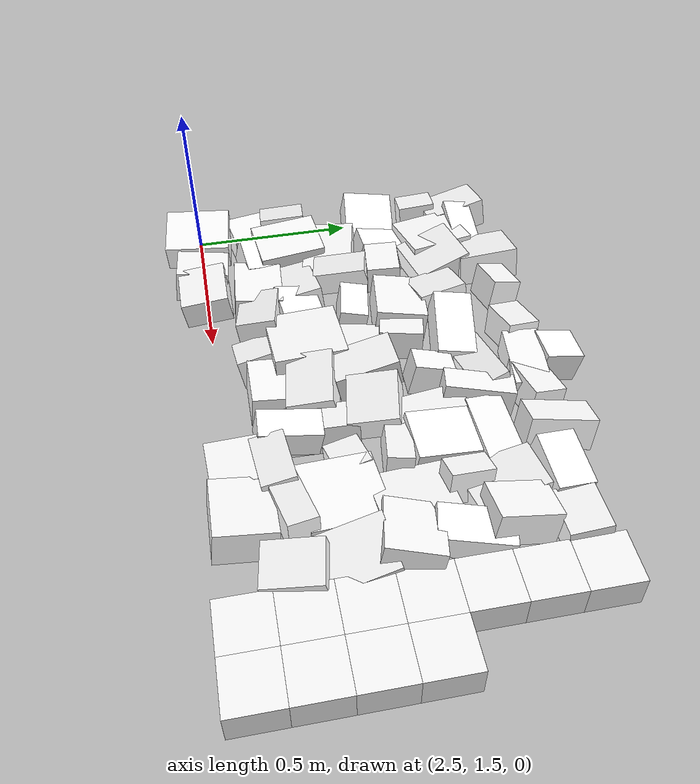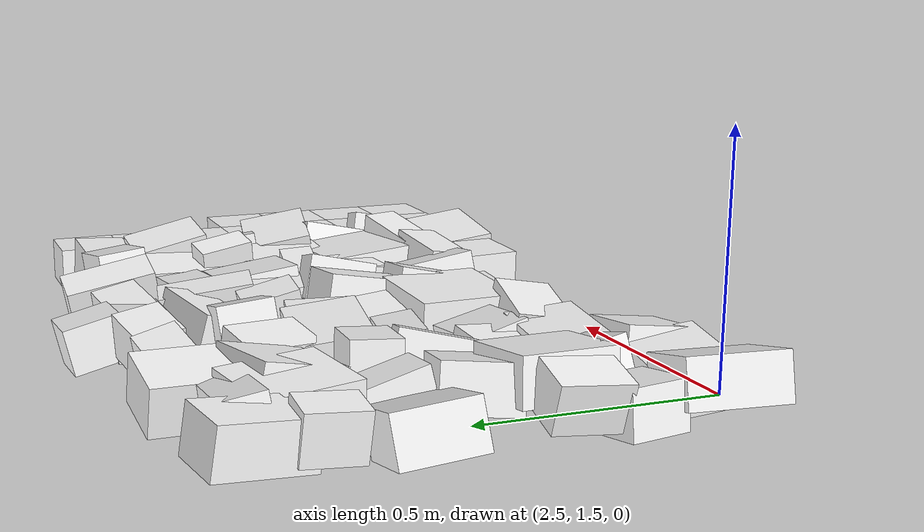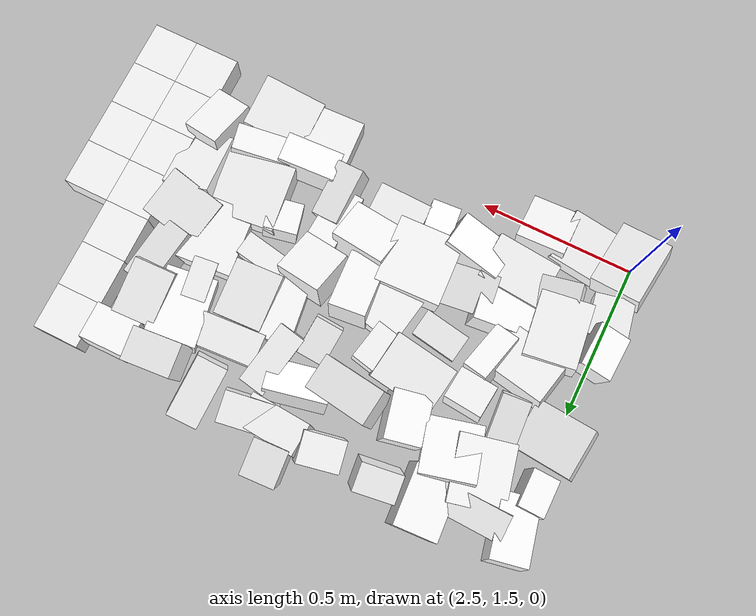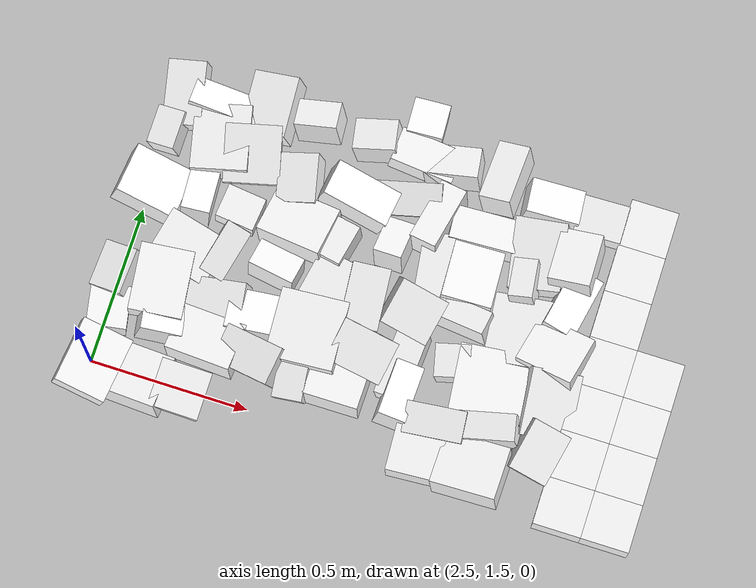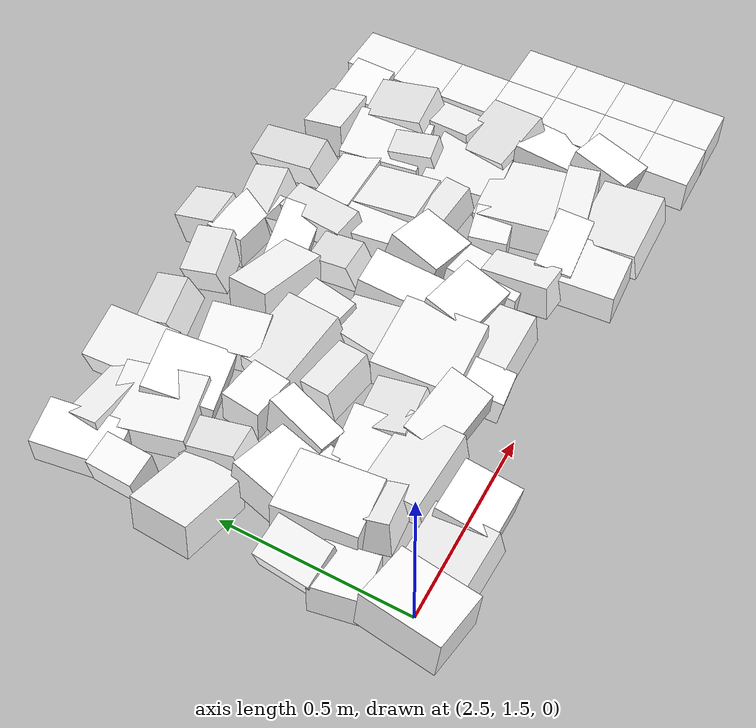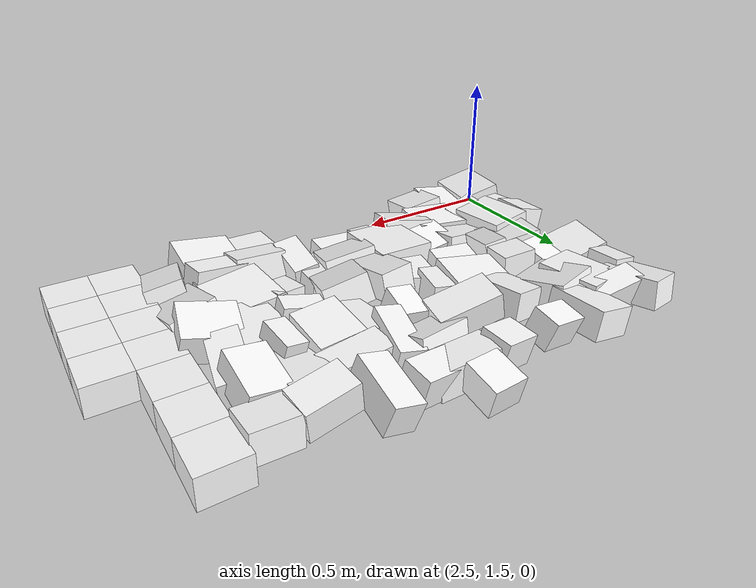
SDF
<sdf version="1.7">
 <world name="default">
  <include><uri>model://sun</uri></include>
  <model name="static_environment">
   <static>true</static>
   <link name="region_530">
    <pose>2.5076814718105576 1.4957768757990042 0.031568006959826915 -0.0055398618858787385 0.22804185539591587 -0.11849545210904816</pose>
    <collision name="region_530_collision">
     <geometry><box><size>0.1640660648733593 0.20913328548267288 0.1</size></box></geometry>
     <surface><friction><ode><mu>1.0</mu><mu2>1.0</mu2></ode></friction></surface>
    </collision>
    <visual name="region_530_visual">
     <geometry><box><size>0.1640660648733593 0.20913328548267288 0.1</size></box></geometry>
     <material><ambient>1.0 1.0 1.0 1.0</ambient><diffuse>1.0 1.0 1.0 1.0</diffuse></material>
    </visual>
   </link>
   <link name="region_531">
    <pose>2.6515708737576853 1.4946352192794792 0.001680859106671212 -0.11848757534612836 -0.13990396817205109 -0.07075057976595311</pose>
    <collision name="region_531_collision">
     <geometry><box><size>0.1927850153646151 0.16695596059760995 0.1</size></box></geometry>
     <surface><friction><ode><mu>1.0</mu><mu2>1.0</mu2></ode></friction></surface>
    </collision>
    <visual name="region_531_visual">
     <geometry><box><size>0.1927850153646151 0.16695596059760995 0.1</size></box></geometry>
     <material><ambient>1.0 1.0 1.0 1.0</ambient><diffuse>1.0 1.0 1.0 1.0</diffuse></material>
    </visual>
   </link>
   <link name="region_532">
    <pose>2.786901135315005 1.496139614787951 0.017382974479607596 0.11973167539864021 0.11310366122033366 0.00021362451981787878</pose>
    <collision name="region_532_collision">
     <geometry><box><size>0.15815211331805767 0.14937282128342147 0.1</size></box></geometry>
     <surface><friction><ode><mu>1.0</mu><mu2>1.0</mu2></ode></friction></surface>
    </collision>
    <visual name="region_532_visual">
     <geometry><box><size>0.15815211331805767 0.14937282128342147 0.1</size></box></geometry>
     <material><ambient>1.0 1.0 1.0 1.0</ambient><diffuse>1.0 1.0 1.0 1.0</diffuse></material>
    </visual>
   </link>
   <link name="region_537">
    <pose>3.531568796084356 1.522625037989375 0.01966503317934848 -0.013343253054145576 -0.04038233263856855 0.05466085649601515</pose>
    <collision name="region_537_collision">
     <geometry><box><size>0.15732103376469306 0.14947723644080474 0.1</size></box></geometry>
     <surface><friction><ode><mu>1.0</mu><mu2>1.0</mu2></ode></friction></surface>
    </collision>
    <visual name="region_537_visual">
     <geometry><box><size>0.15732103376469306 0.14947723644080474 0.1</size></box></geometry>
     <material><ambient>1.0 1.0 1.0 1.0</ambient><diffuse>1.0 1.0 1.0 1.0</diffuse></material>
    </visual>
   </link>
   <link name="region_538">
    <pose>3.7020041893971536 1.5247222728205738 0.040335434540967684 -0.12772019359927494 -0.13984663478878673 0.0013504137177902664</pose>
    <collision name="region_538_collision">
     <geometry><box><size>0.20415039297976195 0.16852878841279345 0.1</size></box></geometry>
     <surface><friction><ode><mu>1.0</mu><mu2>1.0</mu2></ode></friction></surface>
    </collision>
    <visual name="region_538_visual">
     <geometry><box><size>0.20415039297976195 0.16852878841279345 0.1</size></box></geometry>
     <material><ambient>1.0 1.0 1.0 1.0</ambient><diffuse>1.0 1.0 1.0 1.0</diffuse></material>
    </visual>
   </link>
   <link name="region_550">
    <pose>2.4984085819799624 1.67162417474932 0.0028601819481333447 0.0042888951992146596 0.09757328563466916 0.1869522985641784</pose>
    <collision name="region_550_collision">
     <geometry><box><size>0.12426772657355908 0.1330524193768934 0.1</size></box></geometry>
     <surface><friction><ode><mu>1.0</mu><mu2>1.0</mu2></ode></friction></surface>
    </collision>
    <visual name="region_550_visual">
     <geometry><box><size>0.12426772657355908 0.1330524193768934 0.1</size></box></geometry>
     <material><ambient>1.0 1.0 1.0 1.0</ambient><diffuse>1.0 1.0 1.0 1.0</diffuse></material>
    </visual>
   </link>
   <link name="region_551">
    <pose>2.6653898908183615 1.6762723055849853 0.03018759457789091 -0.14557207132012523 0.24685727497245558 0.13966175191827196</pose>
    <collision name="region_551_collision">
     <geometry><box><size>0.1298728478875402 0.10021600310100176 0.1</size></box></geometry>
     <surface><friction><ode><mu>1.0</mu><mu2>1.0</mu2></ode></friction></surface>
    </collision>
    <visual name="region_551_visual">
     <geometry><box><size>0.1298728478875402 0.10021600310100176 0.1</size></box></geometry>
     <material><ambient>1.0 1.0 1.0 1.0</ambient><diffuse>1.0 1.0 1.0 1.0</diffuse></material>
    </visual>
   </link>
   <link name="region_552">
    <pose>2.8187776228478914 1.6631923186933677 0.021376018807656934 -0.09056033977986166 -0.08234724325951992 -0.0649613862708413</pose>
    <collision name="region_552_collision">
     <geometry><box><size>0.2097559328130741 0.1493497404227089 0.1</size></box></geometry>
     <surface><friction><ode><mu>1.0</mu><mu2>1.0</mu2></ode></friction></surface>
    </collision>
    <visual name="region_552_visual">
     <geometry><box><size>0.2097559328130741 0.1493497404227089 0.1</size></box></geometry>
     <material><ambient>1.0 1.0 1.0 1.0</ambient><diffuse>1.0 1.0 1.0 1.0</diffuse></material>
    </visual>
   </link>
   <link name="region_553">
    <pose>2.9624944194084417 1.6568385536874382 0.03981089140452365 0.15445395185810312 -0.16435714184399508 -0.1717365103596638</pose>
    <collision name="region_553_collision">
     <geometry><box><size>0.18700749862652458 0.12020930522267306 0.1</size></box></geometry>
     <surface><friction><ode><mu>1.0</mu><mu2>1.0</mu2></ode></friction></surface>
    </collision>
    <visual name="region_553_visual">
     <geometry><box><size>0.18700749862652458 0.12020930522267306 0.1</size></box></geometry>
     <material><ambient>1.0 1.0 1.0 1.0</ambient><diffuse>1.0 1.0 1.0 1.0</diffuse></material>
    </visual>
   </link>
   <link name="region_554">
    <pose>3.1017398854296445 1.630935391366017 0.002756050681184702 0.15413326450859954 -0.0736210067693357 0.09524142421478343</pose>
    <collision name="region_554_collision">
     <geometry><box><size>0.0939086746460353 0.12610695431808672 0.1</size></box></geometry>
     <surface><friction><ode><mu>1.0</mu><mu2>1.0</mu2></ode></friction></surface>
    </collision>
    <visual name="region_554_visual">
     <geometry><box><size>0.0939086746460353 0.12610695431808672 0.1</size></box></geometry>
     <material><ambient>1.0 1.0 1.0 1.0</ambient><diffuse>1.0 1.0 1.0 1.0</diffuse></material>
    </visual>
   </link>
   <link name="region_555">
    <pose>3.235659246582542 1.648739117863021 0.0006170757839120078 -0.09701220259592974 -0.05631189676451864 -0.005017888298105455</pose>
    <collision name="region_555_collision">
     <geometry><box><size>0.17497054567080686 0.11994226667458904 0.1</size></box></geometry>
     <surface><friction><ode><mu>1.0</mu><mu2>1.0</mu2></ode></friction></surface>
    </collision>
    <visual name="region_555_visual">
     <geometry><box><size>0.17497054567080686 0.11994226667458904 0.1</size></box></geometry>
     <material><ambient>1.0 1.0 1.0 1.0</ambient><diffuse>1.0 1.0 1.0 1.0</diffuse></material>
    </visual>
   </link>
   <link name="region_556">
    <pose>3.4236633445759646 1.6795070127931058 0.02695020485513048 -0.16139881131398393 0.13432908697854268 -0.04848241621808452</pose>
    <collision name="region_556_collision">
     <geometry><box><size>0.08874882262221645 0.18478351056948586 0.1</size></box></geometry>
     <surface><friction><ode><mu>1.0</mu><mu2>1.0</mu2></ode></friction></surface>
    </collision>
    <visual name="region_556_visual">
     <geometry><box><size>0.08874882262221645 0.18478351056948586 0.1</size></box></geometry>
     <material><ambient>1.0 1.0 1.0 1.0</ambient><diffuse>1.0 1.0 1.0 1.0</diffuse></material>
    </visual>
   </link>
   <link name="region_557">
    <pose>3.558452902324011 1.6290438012032111 0.03886972632482305 0.11793235004464825 -0.1037312264085109 0.08477042501019494</pose>
    <collision name="region_557_collision">
     <geometry><box><size>0.18528931789354486 0.09819742179364188 0.1</size></box></geometry>
     <surface><friction><ode><mu>1.0</mu><mu2>1.0</mu2></ode></friction></surface>
    </collision>
    <visual name="region_557_visual">
     <geometry><box><size>0.18528931789354486 0.09819742179364188 0.1</size></box></geometry>
     <material><ambient>1.0 1.0 1.0 1.0</ambient><diffuse>1.0 1.0 1.0 1.0</diffuse></material>
    </visual>
   </link>
   <link name="region_558">
    <pose>3.7039201161379065 1.6542712644716806 0.04935639590902276 -0.025953468332759022 -0.18295366509076916 0.19921855874956973</pose>
    <collision name="region_558_collision">
     <geometry><box><size>0.2033711821210401 0.08479166280243756 0.1</size></box></geometry>
     <surface><friction><ode><mu>1.0</mu><mu2>1.0</mu2></ode></friction></surface>
    </collision>
    <visual name="region_558_visual">
     <geometry><box><size>0.2033711821210401 0.08479166280243756 0.1</size></box></geometry>
     <material><ambient>1.0 1.0 1.0 1.0</ambient><diffuse>1.0 1.0 1.0 1.0</diffuse></material>
    </visual>
   </link>
   <link name="region_559">
    <pose>3.8761352028389977 1.6395269957842182 0.03998851364366082 0.15643175212717803 0.20947934922514366 -0.1750871984683744</pose>
    <collision name="region_559_collision">
     <geometry><box><size>0.12500217326562607 0.16507961312182964 0.1</size></box></geometry>
     <surface><friction><ode><mu>1.0</mu><mu2>1.0</mu2></ode></friction></surface>
    </collision>
    <visual name="region_559_visual">
     <geometry><box><size>0.12500217326562607 0.16507961312182964 0.1</size></box></geometry>
     <material><ambient>1.0 1.0 1.0 1.0</ambient><diffuse>1.0 1.0 1.0 1.0</diffuse></material>
    </visual>
   </link>
   <link name="region_570">
    <pose>2.4923715830411934 1.788027391890941 0.035369644690111925 0.06986474430687106 -0.22894318589666007 -0.07739362286852614</pose>
    <collision name="region_570_collision">
     <geometry><box><size>0.10536326010167556 0.14612067975087553 0.1</size></box></geometry>
     <surface><friction><ode><mu>1.0</mu><mu2>1.0</mu2></ode></friction></surface>
    </collision>
    <visual name="region_570_visual">
     <geometry><box><size>0.10536326010167556 0.14612067975087553 0.1</size></box></geometry>
     <material><ambient>1.0 1.0 1.0 1.0</ambient><diffuse>1.0 1.0 1.0 1.0</diffuse></material>
    </visual>
   </link>
   <link name="region_571">
    <pose>2.6316556749295215 1.7885410384861773 0.042605253919817454 0.03296478802090108 0.08572706935795238 0.11934889766599366</pose>
    <collision name="region_571_collision">
     <geometry><box><size>0.16619526351678537 0.21172243492698042 0.1</size></box></geometry>
     <surface><friction><ode><mu>1.0</mu><mu2>1.0</mu2></ode></friction></surface>
    </collision>
    <visual name="region_571_visual">
     <geometry><box><size>0.16619526351678537 0.21172243492698042 0.1</size></box></geometry>
     <material><ambient>1.0 1.0 1.0 1.0</ambient><diffuse>1.0 1.0 1.0 1.0</diffuse></material>
    </visual>
   </link>
   <link name="region_572">
    <pose>2.8014255634884444 1.7891252990910242 0.0012958196978701986 0.09343863976034272 -0.1288095050315436 0.1235099319183231</pose>
    <collision name="region_572_collision">
     <geometry><box><size>0.19432395758099788 0.13422188477039676 0.1</size></box></geometry>
     <surface><friction><ode><mu>1.0</mu><mu2>1.0</mu2></ode></friction></surface>
    </collision>
    <visual name="region_572_visual">
     <geometry><box><size>0.19432395758099788 0.13422188477039676 0.1</size></box></geometry>
     <material><ambient>1.0 1.0 1.0 1.0</ambient><diffuse>1.0 1.0 1.0 1.0</diffuse></material>
    </visual>
   </link>
   <link name="region_573">
    <pose>2.9321410372006627 1.7765549712439292 0.00948256250778743 -0.22931290725654985 0.04888858812818686 0.1147546807073268</pose>
    <collision name="region_573_collision">
     <geometry><box><size>0.16971889044296298 0.1339951754151947 0.1</size></box></geometry>
     <surface><friction><ode><mu>1.0</mu><mu2>1.0</mu2></ode></friction></surface>
    </collision>
    <visual name="region_573_visual">
     <geometry><box><size>0.16971889044296298 0.1339951754151947 0.1</size></box></geometry>
     <material><ambient>1.0 1.0 1.0 1.0</ambient><diffuse>1.0 1.0 1.0 1.0</diffuse></material>
    </visual>
   </link>
   <link name="region_574">
    <pose>3.105630301556909 1.7784410831244712 0.042640977484312025 0.006459481364513797 -0.05468793864959892 0.05369043267411622</pose>
    <collision name="region_574_collision">
     <geometry><box><size>0.2117453371799521 0.2190020692192252 0.1</size></box></geometry>
     <surface><friction><ode><mu>1.0</mu><mu2>1.0</mu2></ode></friction></surface>
    </collision>
    <visual name="region_574_visual">
     <geometry><box><size>0.2117453371799521 0.2190020692192252 0.1</size></box></geometry>
     <material><ambient>1.0 1.0 1.0 1.0</ambient><diffuse>1.0 1.0 1.0 1.0</diffuse></material>
    </visual>
   </link>
   <link name="region_575">
    <pose>3.276775845261098 1.7734721945386722 0.03969808329253899 0.19966338633009162 0.15414834099931374 -0.14333811257244622</pose>
    <collision name="region_575_collision">
     <geometry><box><size>0.18135667290933993 0.13857290186814222 0.1</size></box></geometry>
     <surface><friction><ode><mu>1.0</mu><mu2>1.0</mu2></ode></friction></surface>
    </collision>
    <visual name="region_575_visual">
     <geometry><box><size>0.18135667290933993 0.13857290186814222 0.1</size></box></geometry>
     <material><ambient>1.0 1.0 1.0 1.0</ambient><diffuse>1.0 1.0 1.0 1.0</diffuse></material>
    </visual>
   </link>
   <link name="region_576">
    <pose>3.408488720398182 1.7734546873334018 0.002341990334655586 0.043425796888531154 -0.07137661800411294 -0.06282477477846887</pose>
    <collision name="region_576_collision">
     <geometry><box><size>0.09762890317799491 0.22073841437311614 0.1</size></box></geometry>
     <surface><friction><ode><mu>1.0</mu><mu2>1.0</mu2></ode></friction></surface>
    </collision>
    <visual name="region_576_visual">
     <geometry><box><size>0.09762890317799491 0.22073841437311614 0.1</size></box></geometry>
     <material><ambient>1.0 1.0 1.0 1.0</ambient><diffuse>1.0 1.0 1.0 1.0</diffuse></material>
    </visual>
   </link>
   <link name="region_577">
    <pose>3.554218689686156 1.8280768703719152 0.005503803574767052 0.03202887495100709 -0.10392997606887072 0.2292311001568585</pose>
    <collision name="region_577_collision">
     <geometry><box><size>0.10928244734717256 0.10323825948265071 0.1</size></box></geometry>
     <surface><friction><ode><mu>1.0</mu><mu2>1.0</mu2></ode></friction></surface>
    </collision>
    <visual name="region_577_visual">
     <geometry><box><size>0.10928244734717256 0.10323825948265071 0.1</size></box></geometry>
     <material><ambient>1.0 1.0 1.0 1.0</ambient><diffuse>1.0 1.0 1.0 1.0</diffuse></material>
    </visual>
   </link>
   <link name="region_578">
    <pose>3.6795670045683586 1.7850721563582677 0.016352307671817817 -0.07671111084763449 0.0054481557765695965 0.10298431651623152</pose>
    <collision name="region_578_collision">
     <geometry><box><size>0.2196614902504646 0.2227195221169087 0.1</size></box></geometry>
     <surface><friction><ode><mu>1.0</mu><mu2>1.0</mu2></ode></friction></surface>
    </collision>
    <visual name="region_578_visual">
     <geometry><box><size>0.2196614902504646 0.2227195221169087 0.1</size></box></geometry>
     <material><ambient>1.0 1.0 1.0 1.0</ambient><diffuse>1.0 1.0 1.0 1.0</diffuse></material>
    </visual>
   </link>
   <link name="region_579">
    <pose>3.8622884403953464 1.7912785031697367 0.020790022788325976 0.2318473825692236 0.23224546902507015 0.15085299111031253</pose>
    <collision name="region_579_collision">
     <geometry><box><size>0.15752704659282607 0.20813670010384766 0.1</size></box></geometry>
     <surface><friction><ode><mu>1.0</mu><mu2>1.0</mu2></ode></friction></surface>
    </collision>
    <visual name="region_579_visual">
     <geometry><box><size>0.15752704659282607 0.20813670010384766 0.1</size></box></geometry>
     <material><ambient>1.0 1.0 1.0 1.0</ambient><diffuse>1.0 1.0 1.0 1.0</diffuse></material>
    </visual>
   </link>
   <link name="region_591">
    <pose>2.6702042445668406 1.9216854791190636 0.020514065701449643 0.07317742830067642 0.17660192533636426 -0.21381300547797538</pose>
    <collision name="region_591_collision">
     <geometry><box><size>0.20082703177499545 0.1599241899353591 0.1</size></box></geometry>
     <surface><friction><ode><mu>1.0</mu><mu2>1.0</mu2></ode></friction></surface>
    </collision>
    <visual name="region_591_visual">
     <geometry><box><size>0.20082703177499545 0.1599241899353591 0.1</size></box></geometry>
     <material><ambient>1.0 1.0 1.0 1.0</ambient><diffuse>1.0 1.0 1.0 1.0</diffuse></material>
    </visual>
   </link>
   <link name="region_592">
    <pose>2.783990520727632 1.947064758381425 0.035931407661523605 0.21279713986770654 0.19934674387777757 -0.21348617494816302</pose>
    <collision name="region_592_collision">
     <geometry><box><size>0.08049794742514396 0.17107467915113123 0.1</size></box></geometry>
     <surface><friction><ode><mu>1.0</mu><mu2>1.0</mu2></ode></friction></surface>
    </collision>
    <visual name="region_592_visual">
     <geometry><box><size>0.08049794742514396 0.17107467915113123 0.1</size></box></geometry>
     <material><ambient>1.0 1.0 1.0 1.0</ambient><diffuse>1.0 1.0 1.0 1.0</diffuse></material>
    </visual>
   </link>
   <link name="region_593">
    <pose>2.9474401786433653 1.9490477211313721 0.016454711244962523 -0.15647982140211764 -0.015220761575641395 -0.16241684786364385</pose>
    <collision name="region_593_collision">
     <geometry><box><size>0.14874525593005802 0.08733805480922513 0.1</size></box></geometry>
     <surface><friction><ode><mu>1.0</mu><mu2>1.0</mu2></ode></friction></surface>
    </collision>
    <visual name="region_593_visual">
     <geometry><box><size>0.14874525593005802 0.08733805480922513 0.1</size></box></geometry>
     <material><ambient>1.0 1.0 1.0 1.0</ambient><diffuse>1.0 1.0 1.0 1.0</diffuse></material>
    </visual>
   </link>
   <link name="region_594">
    <pose>3.128240262408897 1.934073416715305 0.011242928584098762 -0.03591319916329949 -0.16779594189138808 -0.17377866305205564</pose>
    <collision name="region_594_collision">
     <geometry><box><size>0.14831460924106524 0.18510410539015726 0.1</size></box></geometry>
     <surface><friction><ode><mu>1.0</mu><mu2>1.0</mu2></ode></friction></surface>
    </collision>
    <visual name="region_594_visual">
     <geometry><box><size>0.14831460924106524 0.18510410539015726 0.1</size></box></geometry>
     <material><ambient>1.0 1.0 1.0 1.0</ambient><diffuse>1.0 1.0 1.0 1.0</diffuse></material>
    </visual>
   </link>
   <link name="region_595">
    <pose>3.2365846215157577 1.934942878510019 0.04985550375131445 0.18413107651438082 0.07073730432877251 0.08797261658531697</pose>
    <collision name="region_595_collision">
     <geometry><box><size>0.11882376036206337 0.19308182914945735 0.1</size></box></geometry>
     <surface><friction><ode><mu>1.0</mu><mu2>1.0</mu2></ode></friction></surface>
    </collision>
    <visual name="region_595_visual">
     <geometry><box><size>0.11882376036206337 0.19308182914945735 0.1</size></box></geometry>
     <material><ambient>1.0 1.0 1.0 1.0</ambient><diffuse>1.0 1.0 1.0 1.0</diffuse></material>
    </visual>
   </link>
   <link name="region_596">
    <pose>3.387998064059669 1.936384025520765 0.04930145678127188 0.19727016395654356 0.23915313570790642 -0.16093380854987865</pose>
    <collision name="region_596_collision">
     <geometry><box><size>0.1572895146162047 0.1485146122661266 0.1</size></box></geometry>
     <surface><friction><ode><mu>1.0</mu><mu2>1.0</mu2></ode></friction></surface>
    </collision>
    <visual name="region_596_visual">
     <geometry><box><size>0.1572895146162047 0.1485146122661266 0.1</size></box></geometry>
     <material><ambient>1.0 1.0 1.0 1.0</ambient><diffuse>1.0 1.0 1.0 1.0</diffuse></material>
    </visual>
   </link>
   <link name="region_597">
    <pose>3.53381301869413 1.969647741272027 0.016012367023358905 -0.07095374562769663 -0.18919025111250404 -0.14646407810316459</pose>
    <collision name="region_597_collision">
     <geometry><box><size>0.18857486813486377 0.07622669570913432 0.1</size></box></geometry>
     <surface><friction><ode><mu>1.0</mu><mu2>1.0</mu2></ode></friction></surface>
    </collision>
    <visual name="region_597_visual">
     <geometry><box><size>0.18857486813486377 0.07622669570913432 0.1</size></box></geometry>
     <material><ambient>1.0 1.0 1.0 1.0</ambient><diffuse>1.0 1.0 1.0 1.0</diffuse></material>
    </visual>
   </link>
   <link name="region_598">
    <pose>3.728460637407675 1.973718591452517 0.009875281496750411 -0.03651501950641162 -0.11946600117542866 0.0964438439434323</pose>
    <collision name="region_598_collision">
     <geometry><box><size>0.1999832019547301 0.2150221670040595 0.1</size></box></geometry>
     <surface><friction><ode><mu>1.0</mu><mu2>1.0</mu2></ode></friction></surface>
    </collision>
    <visual name="region_598_visual">
     <geometry><box><size>0.1999832019547301 0.2150221670040595 0.1</size></box></geometry>
     <material><ambient>1.0 1.0 1.0 1.0</ambient><diffuse>1.0 1.0 1.0 1.0</diffuse></material>
    </visual>
   </link>
   <link name="region_599">
    <pose>3.843613059696242 1.9362524545551416 0.04088174381360343 -0.18596308200609468 -0.19574430584567304 -0.18475116032502104</pose>
    <collision name="region_599_collision">
     <geometry><box><size>0.18580649976856728 0.16132644721481737 0.1</size></box></geometry>
     <surface><friction><ode><mu>1.0</mu><mu2>1.0</mu2></ode></friction></surface>
    </collision>
    <visual name="region_599_visual">
     <geometry><box><size>0.18580649976856728 0.16132644721481737 0.1</size></box></geometry>
     <material><ambient>1.0 1.0 1.0 1.0</ambient><diffuse>1.0 1.0 1.0 1.0</diffuse></material>
    </visual>
   </link>
   <link name="region_610">
    <pose>2.5024344932816014 2.0830373399928908 0.0068001229648586015 -0.12759347193872378 0.24910986796165624 -0.12248801805777115</pose>
    <collision name="region_610_collision">
     <geometry><box><size>0.19508509455642814 0.16435313467491203 0.1</size></box></geometry>
     <surface><friction><ode><mu>1.0</mu><mu2>1.0</mu2></ode></friction></surface>
    </collision>
    <visual name="region_610_visual">
     <geometry><box><size>0.19508509455642814 0.16435313467491203 0.1</size></box></geometry>
     <material><ambient>1.0 1.0 1.0 1.0</ambient><diffuse>1.0 1.0 1.0 1.0</diffuse></material>
    </visual>
   </link>
   <link name="region_611">
    <pose>2.653475113869324 2.0988919556263004 0.012515993751897676 -0.23866290301592463 0.041735822200817674 0.07678022723228511</pose>
    <collision name="region_611_collision">
     <geometry><box><size>0.09088398552009201 0.1673992755381036 0.1</size></box></geometry>
     <surface><friction><ode><mu>1.0</mu><mu2>1.0</mu2></ode></friction></surface>
    </collision>
    <visual name="region_611_visual">
     <geometry><box><size>0.09088398552009201 0.1673992755381036 0.1</size></box></geometry>
     <material><ambient>1.0 1.0 1.0 1.0</ambient><diffuse>1.0 1.0 1.0 1.0</diffuse></material>
    </visual>
   </link>
   <link name="region_612">
    <pose>2.792105140010216 2.078528445334909 0.04780245707693905 0.040705581225527865 0.06549971163998758 -0.10137697625228104</pose>
    <collision name="region_612_collision">
     <geometry><box><size>0.12330625569469356 0.10516245058101502 0.1</size></box></geometry>
     <surface><friction><ode><mu>1.0</mu><mu2>1.0</mu2></ode></friction></surface>
    </collision>
    <visual name="region_612_visual">
     <geometry><box><size>0.12330625569469356 0.10516245058101502 0.1</size></box></geometry>
     <material><ambient>1.0 1.0 1.0 1.0</ambient><diffuse>1.0 1.0 1.0 1.0</diffuse></material>
    </visual>
   </link>
   <link name="region_613">
    <pose>2.9758904298697866 2.092669004481413 0.028945490703327494 -0.11825544808463939 -0.12236519809558838 -0.13220733793185446</pose>
    <collision name="region_613_collision">
     <geometry><box><size>0.2097466503018947 0.15747184402854195 0.1</size></box></geometry>
     <surface><friction><ode><mu>1.0</mu><mu2>1.0</mu2></ode></friction></surface>
    </collision>
    <visual name="region_613_visual">
     <geometry><box><size>0.2097466503018947 0.15747184402854195 0.1</size></box></geometry>
     <material><ambient>1.0 1.0 1.0 1.0</ambient><diffuse>1.0 1.0 1.0 1.0</diffuse></material>
    </visual>
   </link>
   <link name="region_614">
    <pose>3.1107517508140576 2.0716932751982027 0.02606406663398661 -0.02269141074262493 -0.07759414917341645 -0.20345337893056115</pose>
    <collision name="region_614_collision">
     <geometry><box><size>0.07953194547043728 0.1331881210593902 0.1</size></box></geometry>
     <surface><friction><ode><mu>1.0</mu><mu2>1.0</mu2></ode></friction></surface>
    </collision>
    <visual name="region_614_visual">
     <geometry><box><size>0.07953194547043728 0.1331881210593902 0.1</size></box></geometry>
     <material><ambient>1.0 1.0 1.0 1.0</ambient><diffuse>1.0 1.0 1.0 1.0</diffuse></material>
    </visual>
   </link>
   <link name="region_615">
    <pose>3.272952508140227 2.1230151822582384 0.02559836235157715 -0.24343598672483174 -0.14067675517547773 -0.04665634540802721</pose>
    <collision name="region_615_collision">
     <geometry><box><size>0.09070765897608841 0.12427858548727667 0.1</size></box></geometry>
     <surface><friction><ode><mu>1.0</mu><mu2>1.0</mu2></ode></friction></surface>
    </collision>
    <visual name="region_615_visual">
     <geometry><box><size>0.09070765897608841 0.12427858548727667 0.1</size></box></geometry>
     <material><ambient>1.0 1.0 1.0 1.0</ambient><diffuse>1.0 1.0 1.0 1.0</diffuse></material>
    </visual>
   </link>
   <link name="region_616">
    <pose>3.415482775537993 2.089049114123154 0.001085584283756047 0.008816685626059584 -0.0782183341591226 0.13070828248198063</pose>
    <collision name="region_616_collision">
     <geometry><box><size>0.10204579248876276 0.2155114475071463 0.1</size></box></geometry>
     <surface><friction><ode><mu>1.0</mu><mu2>1.0</mu2></ode></friction></surface>
    </collision>
    <visual name="region_616_visual">
     <geometry><box><size>0.10204579248876276 0.2155114475071463 0.1</size></box></geometry>
     <material><ambient>1.0 1.0 1.0 1.0</ambient><diffuse>1.0 1.0 1.0 1.0</diffuse></material>
    </visual>
   </link>
   <link name="region_617">
    <pose>3.527658742990546 2.094080780050716 0.012828409041600975 -0.11667095102656938 0.06622854546747081 0.039518129282629655</pose>
    <collision name="region_617_collision">
     <geometry><box><size>0.15823859029656318 0.18439855349524337 0.1</size></box></geometry>
     <surface><friction><ode><mu>1.0</mu><mu2>1.0</mu2></ode></friction></surface>
    </collision>
    <visual name="region_617_visual">
     <geometry><box><size>0.15823859029656318 0.18439855349524337 0.1</size></box></geometry>
     <material><ambient>1.0 1.0 1.0 1.0</ambient><diffuse>1.0 1.0 1.0 1.0</diffuse></material>
    </visual>
   </link>
   <link name="region_618">
    <pose>3.6895372722905835 2.1218000495485394 0.04743962410544337 -0.15745964494248949 -0.20359048551591685 0.1495696382175799</pose>
    <collision name="region_618_collision">
     <geometry><box><size>0.07537682790059431 0.12686512531553032 0.1</size></box></geometry>
     <surface><friction><ode><mu>1.0</mu><mu2>1.0</mu2></ode></friction></surface>
    </collision>
    <visual name="region_618_visual">
     <geometry><box><size>0.07537682790059431 0.12686512531553032 0.1</size></box></geometry>
     <material><ambient>1.0 1.0 1.0 1.0</ambient><diffuse>1.0 1.0 1.0 1.0</diffuse></material>
    </visual>
   </link>
   <link name="region_619">
    <pose>3.839569766803786 2.1011099436246194 0.01879632923952797 -0.15860006952497835 0.13872678920801929 -0.21033673809289788</pose>
    <collision name="region_619_collision">
     <geometry><box><size>0.10377233230437027 0.20910902377414195 0.1</size></box></geometry>
     <surface><friction><ode><mu>1.0</mu><mu2>1.0</mu2></ode></friction></surface>
    </collision>
    <visual name="region_619_visual">
     <geometry><box><size>0.10377233230437027 0.20910902377414195 0.1</size></box></geometry>
     <material><ambient>1.0 1.0 1.0 1.0</ambient><diffuse>1.0 1.0 1.0 1.0</diffuse></material>
    </visual>
   </link>
   <link name="region_630">
    <pose>2.49872998265314 2.2581939595370675 0.028157888197684285 0.06823315731398949 -0.11917785324480823 -0.02102608356520269</pose>
    <collision name="region_630_collision">
     <geometry><box><size>0.08650922935042561 0.12227373922901735 0.1</size></box></geometry>
     <surface><friction><ode><mu>1.0</mu><mu2>1.0</mu2></ode></friction></surface>
    </collision>
    <visual name="region_630_visual">
     <geometry><box><size>0.08650922935042561 0.12227373922901735 0.1</size></box></geometry>
     <material><ambient>1.0 1.0 1.0 1.0</ambient><diffuse>1.0 1.0 1.0 1.0</diffuse></material>
    </visual>
   </link>
   <link name="region_631">
    <pose>2.668668543343829 2.275110644943904 0.02821619874520373 -0.023913891093815365 -0.08367878915786625 0.2292824122074208</pose>
    <collision name="region_631_collision">
     <geometry><box><size>0.17840066291127823 0.20947342602827393 0.1</size></box></geometry>
     <surface><friction><ode><mu>1.0</mu><mu2>1.0</mu2></ode></friction></surface>
    </collision>
    <visual name="region_631_visual">
     <geometry><box><size>0.17840066291127823 0.20947342602827393 0.1</size></box></geometry>
     <material><ambient>1.0 1.0 1.0 1.0</ambient><diffuse>1.0 1.0 1.0 1.0</diffuse></material>
    </visual>
   </link>
   <link name="region_632">
    <pose>2.7702036309782017 2.2621737412688585 0.031757093886188824 0.22500120631059956 0.01818597926525023 0.24973981562620196</pose>
    <collision name="region_632_collision">
     <geometry><box><size>0.17507138751042148 0.18224786953836072 0.1</size></box></geometry>
     <surface><friction><ode><mu>1.0</mu><mu2>1.0</mu2></ode></friction></surface>
    </collision>
    <visual name="region_632_visual">
     <geometry><box><size>0.17507138751042148 0.18224786953836072 0.1</size></box></geometry>
     <material><ambient>1.0 1.0 1.0 1.0</ambient><diffuse>1.0 1.0 1.0 1.0</diffuse></material>
    </visual>
   </link>
   <link name="region_633">
    <pose>2.9356005418268136 2.227507485836797 0.02564112659246109 0.03325037894944122 -0.18147767639875018 0.2177921564765236</pose>
    <collision name="region_633_collision">
     <geometry><box><size>0.12395330649960384 0.1556242081499808 0.1</size></box></geometry>
     <surface><friction><ode><mu>1.0</mu><mu2>1.0</mu2></ode></friction></surface>
    </collision>
    <visual name="region_633_visual">
     <geometry><box><size>0.12395330649960384 0.1556242081499808 0.1</size></box></geometry>
     <material><ambient>1.0 1.0 1.0 1.0</ambient><diffuse>1.0 1.0 1.0 1.0</diffuse></material>
    </visual>
   </link>
   <link name="region_634">
    <pose>3.1228621183601257 2.2294294816129168 0.04190627852874312 -0.13001261298383793 0.23506270063128681 -0.1556992704322664</pose>
    <collision name="region_634_collision">
     <geometry><box><size>0.2161069911698418 0.11811174779750037 0.1</size></box></geometry>
     <surface><friction><ode><mu>1.0</mu><mu2>1.0</mu2></ode></friction></surface>
    </collision>
    <visual name="region_634_visual">
     <geometry><box><size>0.2161069911698418 0.11811174779750037 0.1</size></box></geometry>
     <material><ambient>1.0 1.0 1.0 1.0</ambient><diffuse>1.0 1.0 1.0 1.0</diffuse></material>
    </visual>
   </link>
   <link name="region_635">
    <pose>3.2744805510669766 2.27976771568767 0.007718785017138086 0.23657142334704023 -0.08985709326718261 0.22204207283652572</pose>
    <collision name="region_635_collision">
     <geometry><box><size>0.2021747961670018 0.10444141396667934 0.1</size></box></geometry>
     <surface><friction><ode><mu>1.0</mu><mu2>1.0</mu2></ode></friction></surface>
    </collision>
    <visual name="region_635_visual">
     <geometry><box><size>0.2021747961670018 0.10444141396667934 0.1</size></box></geometry>
     <material><ambient>1.0 1.0 1.0 1.0</ambient><diffuse>1.0 1.0 1.0 1.0</diffuse></material>
    </visual>
   </link>
   <link name="region_636">
    <pose>3.3777662739132426 2.239910557926749 0.02184457654509138 -0.14354636536943743 -0.14051330923540617 -0.17827130270329655</pose>
    <collision name="region_636_collision">
     <geometry><box><size>0.08738263108863871 0.20849778001936062 0.1</size></box></geometry>
     <surface><friction><ode><mu>1.0</mu><mu2>1.0</mu2></ode></friction></surface>
    </collision>
    <visual name="region_636_visual">
     <geometry><box><size>0.08738263108863871 0.20849778001936062 0.1</size></box></geometry>
     <material><ambient>1.0 1.0 1.0 1.0</ambient><diffuse>1.0 1.0 1.0 1.0</diffuse></material>
    </visual>
   </link>
   <link name="region_637">
    <pose>3.520594109183101 2.2459214043567757 0.0005297200195066909 -0.05335264711387078 0.07628508905068165 0.05972060933199469</pose>
    <collision name="region_637_collision">
     <geometry><box><size>0.20898879939127446 0.10574292797015215 0.1</size></box></geometry>
     <surface><friction><ode><mu>1.0</mu><mu2>1.0</mu2></ode></friction></surface>
    </collision>
    <visual name="region_637_visual">
     <geometry><box><size>0.20898879939127446 0.10574292797015215 0.1</size></box></geometry>
     <material><ambient>1.0 1.0 1.0 1.0</ambient><diffuse>1.0 1.0 1.0 1.0</diffuse></material>
    </visual>
   </link>
   <link name="region_638">
    <pose>3.7064415171996563 2.2250814374275287 0.00619546107408952 0.043302678594998034 -0.15078748331191405 0.16335586300432353</pose>
    <collision name="region_638_collision">
     <geometry><box><size>0.1632172238170572 0.22409020427603188 0.1</size></box></geometry>
     <surface><friction><ode><mu>1.0</mu><mu2>1.0</mu2></ode></friction></surface>
    </collision>
    <visual name="region_638_visual">
     <geometry><box><size>0.1632172238170572 0.22409020427603188 0.1</size></box></geometry>
     <material><ambient>1.0 1.0 1.0 1.0</ambient><diffuse>1.0 1.0 1.0 1.0</diffuse></material>
    </visual>
   </link>
   <link name="region_639">
    <pose>3.8207026874561105 2.228235125957881 0.04674360916674178 -0.21949572574329307 -0.16978909103517265 0.05643842475354893</pose>
    <collision name="region_639_collision">
     <geometry><box><size>0.13174912472317046 0.17770253250423745 0.1</size></box></geometry>
     <surface><friction><ode><mu>1.0</mu><mu2>1.0</mu2></ode></friction></surface>
    </collision>
    <visual name="region_639_visual">
     <geometry><box><size>0.13174912472317046 0.17770253250423745 0.1</size></box></geometry>
     <material><ambient>1.0 1.0 1.0 1.0</ambient><diffuse>1.0 1.0 1.0 1.0</diffuse></material>
    </visual>
   </link>
   <link name="region_650">
    <pose>2.5151582288356407 2.383419412809583 0.024817620705672058 0.1167647309974757 -0.08486321541433078 0.193173502125911</pose>
    <collision name="region_650_collision">
     <geometry><box><size>0.11997482781860819 0.20307270675640784 0.1</size></box></geometry>
     <surface><friction><ode><mu>1.0</mu><mu2>1.0</mu2></ode></friction></surface>
    </collision>
    <visual name="region_650_visual">
     <geometry><box><size>0.11997482781860819 0.20307270675640784 0.1</size></box></geometry>
     <material><ambient>1.0 1.0 1.0 1.0</ambient><diffuse>1.0 1.0 1.0 1.0</diffuse></material>
    </visual>
   </link>
   <link name="region_651">
    <pose>2.639656847273284 2.3823557612405324 0.027170055881305784 -0.15909875674227408 0.11338143211424812 -0.036455922302417065</pose>
    <collision name="region_651_collision">
     <geometry><box><size>0.2167718157336074 0.08976212012241057 0.1</size></box></geometry>
     <surface><friction><ode><mu>1.0</mu><mu2>1.0</mu2></ode></friction></surface>
    </collision>
    <visual name="region_651_visual">
     <geometry><box><size>0.2167718157336074 0.08976212012241057 0.1</size></box></geometry>
     <material><ambient>1.0 1.0 1.0 1.0</ambient><diffuse>1.0 1.0 1.0 1.0</diffuse></material>
    </visual>
   </link>
   <link name="region_652">
    <pose>2.7835246653805754 2.4232157567625916 0.028504025486910313 0.019842299112910577 -0.19962415259587507 0.056502221232966665</pose>
    <collision name="region_652_collision">
     <geometry><box><size>0.14404156901419998 0.19555528860179047 0.1</size></box></geometry>
     <surface><friction><ode><mu>1.0</mu><mu2>1.0</mu2></ode></friction></surface>
    </collision>
    <visual name="region_652_visual">
     <geometry><box><size>0.14404156901419998 0.19555528860179047 0.1</size></box></geometry>
     <material><ambient>1.0 1.0 1.0 1.0</ambient><diffuse>1.0 1.0 1.0 1.0</diffuse></material>
    </visual>
   </link>
   <link name="region_653">
    <pose>2.9360052636998386 2.426067954650114 0.028652270913639366 -0.24091937899675947 -0.19661173647226854 0.14506069583663267</pose>
    <collision name="region_653_collision">
     <geometry><box><size>0.13560168169748263 0.09219381303605392 0.1</size></box></geometry>
     <surface><friction><ode><mu>1.0</mu><mu2>1.0</mu2></ode></friction></surface>
    </collision>
    <visual name="region_653_visual">
     <geometry><box><size>0.13560168169748263 0.09219381303605392 0.1</size></box></geometry>
     <material><ambient>1.0 1.0 1.0 1.0</ambient><diffuse>1.0 1.0 1.0 1.0</diffuse></material>
    </visual>
   </link>
   <link name="region_654">
    <pose>3.1240596927795714 2.4238338787365263 0.022553439745189415 -0.13921428191634977 -0.18924673289264604 0.2037938424024981</pose>
    <collision name="region_654_collision">
     <geometry><box><size>0.1351028871714808 0.10220091906229367 0.1</size></box></geometry>
     <surface><friction><ode><mu>1.0</mu><mu2>1.0</mu2></ode></friction></surface>
    </collision>
    <visual name="region_654_visual">
     <geometry><box><size>0.1351028871714808 0.10220091906229367 0.1</size></box></geometry>
     <material><ambient>1.0 1.0 1.0 1.0</ambient><diffuse>1.0 1.0 1.0 1.0</diffuse></material>
    </visual>
   </link>
   <link name="region_655">
    <pose>3.279828855688942 2.4172471217724536 0.007013489036324017 -0.007306317460900991 0.10064837925012177 -0.0734708255874475</pose>
    <collision name="region_655_collision">
     <geometry><box><size>0.2013658965970659 0.10783970492663172 0.1</size></box></geometry>
     <surface><friction><ode><mu>1.0</mu><mu2>1.0</mu2></ode></friction></surface>
    </collision>
    <visual name="region_655_visual">
     <geometry><box><size>0.2013658965970659 0.10783970492663172 0.1</size></box></geometry>
     <material><ambient>1.0 1.0 1.0 1.0</ambient><diffuse>1.0 1.0 1.0 1.0</diffuse></material>
    </visual>
   </link>
   <link name="region_656">
    <pose>3.3717565511264986 2.4174683041786107 0.007521304777708376 -0.17794168296386553 -0.1378865376304455 0.16225928566676778</pose>
    <collision name="region_656_collision">
     <geometry><box><size>0.1703273175809376 0.1004781155387426 0.1</size></box></geometry>
     <surface><friction><ode><mu>1.0</mu><mu2>1.0</mu2></ode></friction></surface>
    </collision>
    <visual name="region_656_visual">
     <geometry><box><size>0.1703273175809376 0.1004781155387426 0.1</size></box></geometry>
     <material><ambient>1.0 1.0 1.0 1.0</ambient><diffuse>1.0 1.0 1.0 1.0</diffuse></material>
    </visual>
   </link>
   <link name="region_657">
    <pose>3.53848009443183 2.4246921552482017 0.027336600292797237 -0.20196731088195397 -0.24354504268637744 0.004778227836047755</pose>
    <collision name="region_657_collision">
     <geometry><box><size>0.10034960141201153 0.20087766628252215 0.1</size></box></geometry>
     <surface><friction><ode><mu>1.0</mu><mu2>1.0</mu2></ode></friction></surface>
    </collision>
    <visual name="region_657_visual">
     <geometry><box><size>0.10034960141201153 0.20087766628252215 0.1</size></box></geometry>
     <material><ambient>1.0 1.0 1.0 1.0</ambient><diffuse>1.0 1.0 1.0 1.0</diffuse></material>
    </visual>
   </link>
   <link name="region_658">
    <pose>3.6979420234124474 2.382695117869869 0.04178030829440996 -0.10404370257739115 0.1530733818581923 0.07128621137025609</pose>
    <collision name="region_658_collision">
     <geometry><box><size>0.16834911907408254 0.11057798305451554 0.1</size></box></geometry>
     <surface><friction><ode><mu>1.0</mu><mu2>1.0</mu2></ode></friction></surface>
    </collision>
    <visual name="region_658_visual">
     <geometry><box><size>0.16834911907408254 0.11057798305451554 0.1</size></box></geometry>
     <material><ambient>1.0 1.0 1.0 1.0</ambient><diffuse>1.0 1.0 1.0 1.0</diffuse></material>
    </visual>
   </link>
   <link name="region_659">
    <pose>3.8557462184177114 2.384042872205531 0.023038803353861076 0.06389509144133676 -0.04551244222115036 0.01438122173967038</pose>
    <collision name="region_659_collision">
     <geometry><box><size>0.1482313405757877 0.11884981956923846 0.1</size></box></geometry>
     <surface><friction><ode><mu>1.0</mu><mu2>1.0</mu2></ode></friction></surface>
    </collision>
    <visual name="region_659_visual">
     <geometry><box><size>0.1482313405757877 0.11884981956923846 0.1</size></box></geometry>
     <material><ambient>1.0 1.0 1.0 1.0</ambient><diffuse>1.0 1.0 1.0 1.0</diffuse></material>
    </visual>
   </link>
   <link name="region_675">
    <pose>3.2535701751413555 2.5206217398758297 0.006616972978045194 -0.2265430162995712 0.01706716110331652 0.05262202608542399</pose>
    <collision name="region_675_collision">
     <geometry><box><size>0.11393846133857073 0.12169243471842056 0.1</size></box></geometry>
     <surface><friction><ode><mu>1.0</mu><mu2>1.0</mu2></ode></friction></surface>
    </collision>
    <visual name="region_675_visual">
     <geometry><box><size>0.11393846133857073 0.12169243471842056 0.1</size></box></geometry>
     <material><ambient>1.0 1.0 1.0 1.0</ambient><diffuse>1.0 1.0 1.0 1.0</diffuse></material>
    </visual>
   </link>
   <link name="region_920">
    <pose>4.0 1.5 0.0 0.0 0.0 0.0</pose>
    <collision name="region_920_collision">
     <geometry><box><size>0.15 0.15 0.1</size></box></geometry>
     <surface><friction><ode><mu>1.0</mu><mu2>1.0</mu2></ode></friction></surface>
    </collision>
    <visual name="region_920_visual">
     <geometry><box><size>0.15 0.15 0.1</size></box></geometry>
     <material><ambient>1.0 1.0 1.0 1.0</ambient><diffuse>1.0 1.0 1.0 1.0</diffuse></material>
    </visual>
   </link>
   <link name="region_921">
    <pose>4.15 1.5 0.0 0.0 0.0 0.0</pose>
    <collision name="region_921_collision">
     <geometry><box><size>0.15 0.15 0.1</size></box></geometry>
     <surface><friction><ode><mu>1.0</mu><mu2>1.0</mu2></ode></friction></surface>
    </collision>
    <visual name="region_921_visual">
     <geometry><box><size>0.15 0.15 0.1</size></box></geometry>
     <material><ambient>1.0 1.0 1.0 1.0</ambient><diffuse>1.0 1.0 1.0 1.0</diffuse></material>
    </visual>
   </link>
   <link name="region_940">
    <pose>4.0 1.65 0.0 0.0 0.0 0.0</pose>
    <collision name="region_940_collision">
     <geometry><box><size>0.15 0.15 0.1</size></box></geometry>
     <surface><friction><ode><mu>1.0</mu><mu2>1.0</mu2></ode></friction></surface>
    </collision>
    <visual name="region_940_visual">
     <geometry><box><size>0.15 0.15 0.1</size></box></geometry>
     <material><ambient>1.0 1.0 1.0 1.0</ambient><diffuse>1.0 1.0 1.0 1.0</diffuse></material>
    </visual>
   </link>
   <link name="region_941">
    <pose>4.15 1.65 0.0 0.0 0.0 0.0</pose>
    <collision name="region_941_collision">
     <geometry><box><size>0.15 0.15 0.1</size></box></geometry>
     <surface><friction><ode><mu>1.0</mu><mu2>1.0</mu2></ode></friction></surface>
    </collision>
    <visual name="region_941_visual">
     <geometry><box><size>0.15 0.15 0.1</size></box></geometry>
     <material><ambient>1.0 1.0 1.0 1.0</ambient><diffuse>1.0 1.0 1.0 1.0</diffuse></material>
    </visual>
   </link>
   <link name="region_960">
    <pose>4.0 1.7999999999999998 0.0 0.0 0.0 0.0</pose>
    <collision name="region_960_collision">
     <geometry><box><size>0.15 0.15 0.1</size></box></geometry>
     <surface><friction><ode><mu>1.0</mu><mu2>1.0</mu2></ode></friction></surface>
    </collision>
    <visual name="region_960_visual">
     <geometry><box><size>0.15 0.15 0.1</size></box></geometry>
     <material><ambient>1.0 1.0 1.0 1.0</ambient><diffuse>1.0 1.0 1.0 1.0</diffuse></material>
    </visual>
   </link>
   <link name="region_961">
    <pose>4.15 1.7999999999999998 0.0 0.0 0.0 0.0</pose>
    <collision name="region_961_collision">
     <geometry><box><size>0.15 0.15 0.1</size></box></geometry>
     <surface><friction><ode><mu>1.0</mu><mu2>1.0</mu2></ode></friction></surface>
    </collision>
    <visual name="region_961_visual">
     <geometry><box><size>0.15 0.15 0.1</size></box></geometry>
     <material><ambient>1.0 1.0 1.0 1.0</ambient><diffuse>1.0 1.0 1.0 1.0</diffuse></material>
    </visual>
   </link>
   <link name="region_980">
    <pose>4.0 1.9499999999999997 0.0 0.0 0.0 0.0</pose>
    <collision name="region_980_collision">
     <geometry><box><size>0.15 0.15 0.1</size></box></geometry>
     <surface><friction><ode><mu>1.0</mu><mu2>1.0</mu2></ode></friction></surface>
    </collision>
    <visual name="region_980_visual">
     <geometry><box><size>0.15 0.15 0.1</size></box></geometry>
     <material><ambient>1.0 1.0 1.0 1.0</ambient><diffuse>1.0 1.0 1.0 1.0</diffuse></material>
    </visual>
   </link>
   <link name="region_981">
    <pose>4.15 1.9499999999999997 0.0 0.0 0.0 0.0</pose>
    <collision name="region_981_collision">
     <geometry><box><size>0.15 0.15 0.1</size></box></geometry>
     <surface><friction><ode><mu>1.0</mu><mu2>1.0</mu2></ode></friction></surface>
    </collision>
    <visual name="region_981_visual">
     <geometry><box><size>0.15 0.15 0.1</size></box></geometry>
     <material><ambient>1.0 1.0 1.0 1.0</ambient><diffuse>1.0 1.0 1.0 1.0</diffuse></material>
    </visual>
   </link>
   <link name="region_1000">
    <pose>4.0 2.0999999999999996 0.0 0.0 0.0 0.0</pose>
    <collision name="region_1000_collision">
     <geometry><box><size>0.15 0.15 0.1</size></box></geometry>
     <surface><friction><ode><mu>1.0</mu><mu2>1.0</mu2></ode></friction></surface>
    </collision>
    <visual name="region_1000_visual">
     <geometry><box><size>0.15 0.15 0.1</size></box></geometry>
     <material><ambient>1.0 1.0 1.0 1.0</ambient><diffuse>1.0 1.0 1.0 1.0</diffuse></material>
    </visual>
   </link>
   <link name="region_1020">
    <pose>4.0 2.2499999999999996 0.0 0.0 0.0 0.0</pose>
    <collision name="region_1020_collision">
     <geometry><box><size>0.15 0.15 0.1</size></box></geometry>
     <surface><friction><ode><mu>1.0</mu><mu2>1.0</mu2></ode></friction></surface>
    </collision>
    <visual name="region_1020_visual">
     <geometry><box><size>0.15 0.15 0.1</size></box></geometry>
     <material><ambient>1.0 1.0 1.0 1.0</ambient><diffuse>1.0 1.0 1.0 1.0</diffuse></material>
    </visual>
   </link>
   <link name="region_1040">
    <pose>4.0 2.3999999999999995 0.0 0.0 0.0 0.0</pose>
    <collision name="region_1040_collision">
     <geometry><box><size>0.15 0.15 0.1</size></box></geometry>
     <surface><friction><ode><mu>1.0</mu><mu2>1.0</mu2></ode></friction></surface>
    </collision>
    <visual name="region_1040_visual">
     <geometry><box><size>0.15 0.15 0.1</size></box></geometry>
     <material><ambient>1.0 1.0 1.0 1.0</ambient><diffuse>1.0 1.0 1.0 1.0</diffuse></material>
    </visual>
   </link>
  </model>
 </world>
</sdf>
